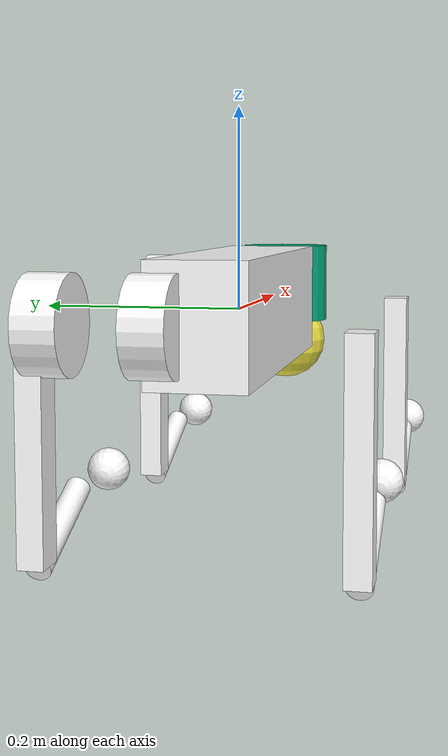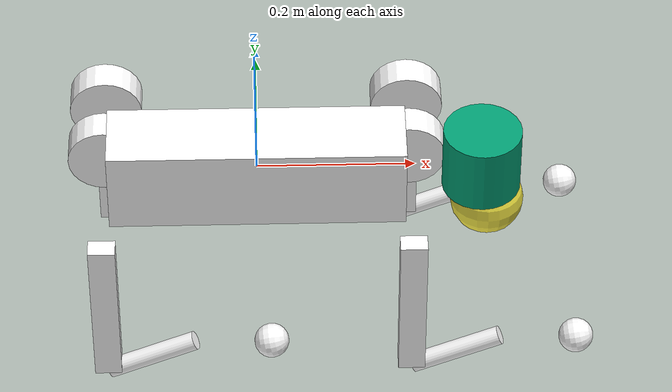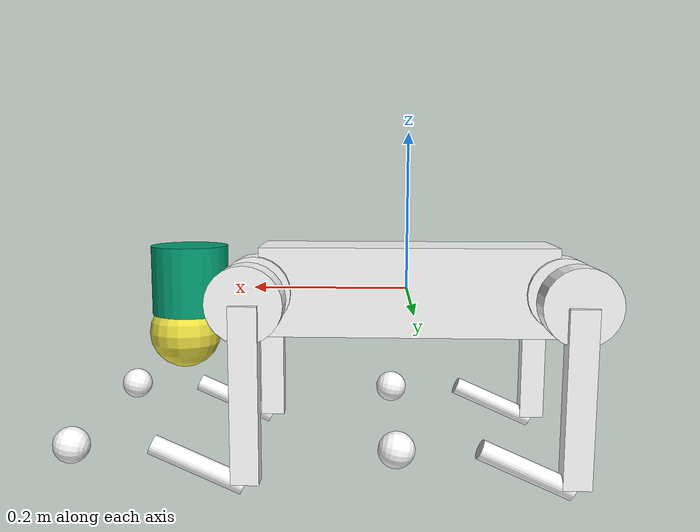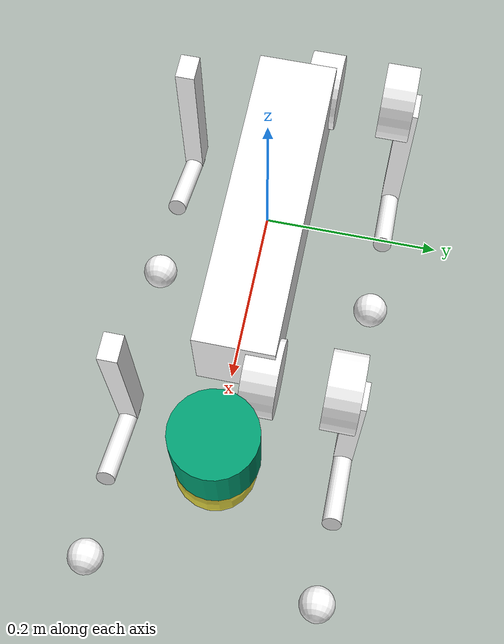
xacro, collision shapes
<?xml version="1.0"?>
<robot xmlns:xacro="http://wiki.ros.org/xacro" name="go2">
  <xacro:arg name="prefix" default=""/>

  <xacro:include filename="$(find go2_description)/urdf/leg.urdf.xacro"/>

<!-- Links -->
 <link name="livox_frame">
    <inertial>
      <origin xyz="0.0 0.0 0.0" rpy="0 0 0" />
      <mass value="0.001" />
      <inertia
        ixx="0.0" ixy="0.0" ixz="0.0"
        iyy="0.0" iyz="0.0" izz="0.0" />
    </inertial>
    <visual>
      <origin xyz="0.32 0 0.14" rpy="1.0 0.0 -1.57" />
      <geometry>
         <mesh filename="package://go2_description/dae/mid360.dae" scale="0.001 0.001 0.001"/>
      </geometry>
      <material
        name="">
        <color rgba="0.1 0.1 0.1 0.8" />
      </material>
    </visual>
    <collision>
      <origin rpy="0 0 0" xyz="0 0 0" />
      <geometry>
        <box size="0.0 0.0 0.0" />
      </geometry>
    </collision>
  </link>

 <link name="base_link">
    <inertial>
      <origin xyz="0.021112 0 -0.005366" rpy="0 0 0" />
      <mass value="6.921" />
      <inertia
        ixx="0.02448" ixy="0.00012166" ixz="0.0014849"
        iyy="0.098077" iyz="-3.12E-05" izz="0.107" />
    </inertial>
    <visual>
      <origin xyz="0 0 0" rpy="0 0 0" />
      <geometry>
         <mesh filename="package://go2_description/dae/base.dae" scale="1 1 1"/>
      </geometry>
      <material
        name="">
        <color rgba="1 1 1 1" />
      </material>
    </visual>
    <collision>
      <origin rpy="0 0 0" xyz="0 0 0" />
      <geometry>
        <box size="0.3762 0.0935 0.114" />
      </geometry>
    </collision>
  </link>

  <link name="Head_upper">
    <inertial>
      <origin xyz="0 0 0" rpy="0 0 0" />
      <mass value="0.001" />
      <inertia
        ixx="9.6e-06" ixy="0" ixz="0"
        iyy="9.6e-06" iyz="0" izz="9.6e-06" />
    </inertial>
    <collision>
      <origin xyz="0 0 0" rpy="0 0 0" />
      <geometry>
        <cylinder radius="0.05" length="0.09" />
      </geometry>
    </collision>
  </link>

  <link name="Head_lower">
    <inertial>
      <origin xyz="0 0 0" rpy="0 0 0" />
      <mass value="0.001" />
      <inertia
        ixx="9.6e-06" ixy="0" ixz="0"
        iyy="9.6e-06" iyz="0" izz="9.6e-06" />
    </inertial>
    <collision>
      <origin xyz="0 0 0" rpy="0 0 0" />
      <geometry>
        <sphere radius="0.047" />
      </geometry>
    </collision>
  </link>

  <link name="imu">
    <inertial>
      <origin xyz="0 0 0" rpy="0 0 0" />
      <mass value="0" />
      <inertia
        ixx="0" ixy="0" ixz="0"
        iyy="0" iyz="0" izz="0" />
    </inertial>
  </link>

  <link name="radar">
    <inertial>
      <origin xyz="0 0 0" rpy="0 0 0" />
      <mass value="0" />
      <inertia
        ixx="0" ixy="0" ixz="0"
        iyy="0" iyz="0" izz="0" />
    </inertial>
  </link>

  <joint name="livox_joint" type="fixed">
    <origin xyz="0 0 0" rpy="0 0 0" />
    <parent link="livox_frame" />
    <child link="base_link" />
  </joint>

  <joint name="Head_upper_joint" type="fixed" dont_collapse="true">
    <origin xyz="0.285 0 0.01" rpy="0 0 0" />
    <parent link="base_link" />
    <child link="Head_upper" />
    <axis xyz="0 0 0" />
  </joint>

 <joint name="Head_lower_joint" type="fixed" dont_collapse="true">
    <origin xyz="0.008 0 -0.07" rpy="0 0 0" />
    <parent link="Head_upper" />
    <child link="Head_lower" />
    <axis xyz="0 0 0" />
  </joint>

  <joint name="imu_joint" type="fixed">
    <origin xyz="-0.02557 0 0.04232" rpy="0 0 0" />
    <parent link="base_link" />
    <child link="imu" />
    <axis xyz="0 0 0" />
  </joint>

  <joint name="radar_joint" type="fixed">
    <origin xyz="0.28945 0 -0.046825" rpy="0 2.8782 0" />
    <parent link="base_link" />
    <child link="radar" />
    <axis xyz="0 0 0" />
  </joint>

  <xacro:go2_leg name="LF" x_joint="0.1934" y_joint="0.0465" y_thigh_joint="0.0955"/>
  <xacro:go2_leg name="RF" x_joint="0.1934" y_joint="-0.0465" y_thigh_joint="-0.0955"/>
  <xacro:go2_leg name="LR" x_joint="-0.1934" y_joint="0.0465" y_thigh_joint="0.0955"/>
  <xacro:go2_leg name="RR" x_joint="-0.1934" y_joint="-0.0465" y_thigh_joint="-0.0955"/>

  <xacro:include filename="$(find go2_description)/urdf/gazebo.urdf.xacro"/>

</robot>

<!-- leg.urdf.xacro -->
<robot xmlns:xacro="http://ros.org/wiki/xacro">
  <xacro:macro name="go2_leg" params="name  x_joint y_joint y_thigh_joint" >

    <xacro:property name="LF" value="LF" />
    <xacro:property name="RF" value="RF" />
    <xacro:property name="LR" value="LR" />
    <xacro:property name="RR" value="RR" />

    <link name="${name}_hip">
      <inertial>
        <xacro:if value="${(name == LF)}">
          <origin xyz="-0.0054 0.00194 -0.000105" rpy="0 0 0" />
        </xacro:if>
        <xacro:if value="${(name == RF)}">
          <origin xyz="-0.0054 -0.00194 -0.000105" rpy="0 0 0" />
        </xacro:if>
        <xacro:if value="${(name == LR)}">
          <origin xyz="0.0054 0.00194 -0.000105" rpy="0 0 0" />
        </xacro:if>
        <xacro:if value="${(name == RR)}">
          <origin xyz="0.0054 -0.00194 -0.000105" rpy="0 0 0" />
        </xacro:if>
        <mass value="0.678" />
        <inertia
          ixx="0.00048" ixy="-3.01E-06" ixz="1.11E-06"
          iyy="0.000884" iyz="-1.42E-06" izz="0.000596" />
      </inertial>
      <visual>
        <origin xyz="0 0 0" rpy="0 0 0" />
        <geometry>
          <mesh filename="package://go2_description/dae/hip.dae" scale="1 1 1"/>
        </geometry>
        <material
          name="">
          <color rgba="1 1 1 1" />
        </material>
      </visual>
      <collision>
        <origin rpy="1.5707963267948966 0 0" xyz="0 0.08 0" />
        <geometry>
          <cylinder length="0.04" radius="0.046" />
        </geometry>
      </collision>
    </link>

    <joint
      name="${name}_hip_joint" type="revolute">
      <origin xyz="${x_joint} ${y_joint} 0" rpy="0 0 0" />
      <parent link="base_link" />
      <child link="${name}_hip" />
      <axis xyz="1 0 0" />
      <limit lower="-1.0472" upper="1.0472" effort="23.7" velocity="30.1" />
    </joint>

    <link name="${name}_thigh">
      <inertial>
        <origin xyz="-0.00374 -0.0223 -0.0327" rpy="0 0 0" />
        <mass value="1.152" />
        <inertia
          ixx="0.00584" ixy="8.72E-05" ixz="-0.000289"
          iyy="0.0058" iyz="0.000808" izz="0.00103" />
      </inertial>
      <visual>
        <origin xyz="0 0 0" rpy="0 0 0" />
        <geometry>
          <xacro:if value="${(name == LF) or (name == LR)}">
            <mesh filename="package://go2_description/dae/thigh.dae" scale="1 1 1"/>
          </xacro:if>
           <xacro:if value="${(name == RF) or (name == RR)}">
            <mesh filename="package://go2_description/dae/thigh_mirror.dae" scale="1 1 1"/>
          </xacro:if>
        </geometry>
        <material
          name="">
          <color rgba="1 1 1 1" />
        </material>
      </visual>
      <collision>
        <origin rpy="0 1.5707963267948966 0" xyz="0 0 -0.1065" />
        <geometry>
          <box size="0.213 0.0245 0.034" />
        </geometry>
      </collision>
    </link>

    <joint name="${name}_upper_leg_joint" type="revolute">
      <origin xyz="0 ${y_thigh_joint} 0" rpy="0 0 0" />
      <parent link="${name}_hip" />
      <child link="${name}_thigh" />
      <axis xyz="0 1 0" />
      <limit lower="-0.5236" upper="4.5379" effort="23.7" velocity="30.1" />
    </joint>

    <link
      name="${name}_calf">
      <inertial>
        <origin xyz="0.00548 -0.000975 -0.115" rpy="0 0 0" />
        <mass value="0.154" />
        <inertia
          ixx="0.00108" ixy="3.4E-07" ixz="1.72E-05"
          iyy="0.0011" iyz="8.28E-06" izz="3.29E-05" />
      </inertial>
      <visual>
        <origin xyz="0 0 0" rpy="0 0 0" />
        <geometry>
          <xacro:if value="${(name == LF) or (name == LR)}">
            <mesh filename="package://go2_description/dae/calf.dae" scale="1 1 1"/>
          </xacro:if>
           <xacro:if value="${(name == RF) or (name == RR)}">
            <mesh filename="package://go2_description/dae/calf_mirror.dae" scale="1 1 1"/>
          </xacro:if>
        </geometry>
        <material
          name="">
          <color rgba="1 1 1 1" />
        </material>
      </visual>
      <collision>
        <origin rpy="0 -0.21 0" xyz="0.008 0 -0.06" />
        <geometry>
          <cylinder length="0.12" radius="0.012" />
        </geometry>
      </collision>
    </link>

    <joint name="${name}_lower_leg_joint" type="revolute">
      <origin xyz="0 0 -0.213" rpy="0 0 0" />
      <parent link="${name}_thigh" />
      <child link="${name}_calf" />
      <axis xyz="0 1 0" />
      <limit lower="-2.7227" upper="-0.83776" effort="45.43" velocity="15.70" />
    </joint>

    <link name="${name}_foot">
      <inertial>
        <origin xyz="0 0 0" rpy="0 0 0" />
        <mass value="0.04" />
        <inertia
          ixx="9.6e-06" ixy="0" ixz="0"
          iyy="9.6e-06" iyz="0" izz="9.6e-06" />
      </inertial>
      <visual>
        <origin xyz="0 0 0" rpy="0 0 0" />
        <geometry>
          <mesh filename="package://go2_description/dae/foot.dae" scale="1 1 1"/>
        </geometry>
        <material
          name="">
          <color rgba="1 1 1 1" />
        </material>
      </visual>
      <collision>
        <origin rpy="0 0 0" xyz="-0.002 0 0" />
        <geometry>
          <sphere radius="0.022" />
        </geometry>
      </collision>
    </link>

    <joint name="${name}_foot_joint" type="fixed" dont_collapse="true">
      <origin xyz="0 0 -0.213" rpy="0 0 0" />
      <parent link="${name}_calf" />
      <child link="${name}_foot" />
      <axis xyz="0 0 0" />
    </joint>

    <ros2_control name="${name}_control" type="system">
      <hardware>
        <plugin>gazebo_ros2_control/GazeboSystem</plugin>
      </hardware>

      <joint name="${name}_hip_joint">
        <command_interface name="effort"/>
        <state_interface name="position"/>
        <state_interface name="velocity"/>
      </joint>

      <joint name="${name}_upper_leg_joint">
        <command_interface name="effort"/>
        <state_interface name="position"/>
        <state_interface name="velocity"/>
      </joint>

      <joint name="${name}_lower_leg_joint">
        <command_interface name="effort"/>
        <state_interface name="position"/>
        <state_interface name="velocity"/>
      </joint>
    </ros2_control>

  </xacro:macro>
</robot>
